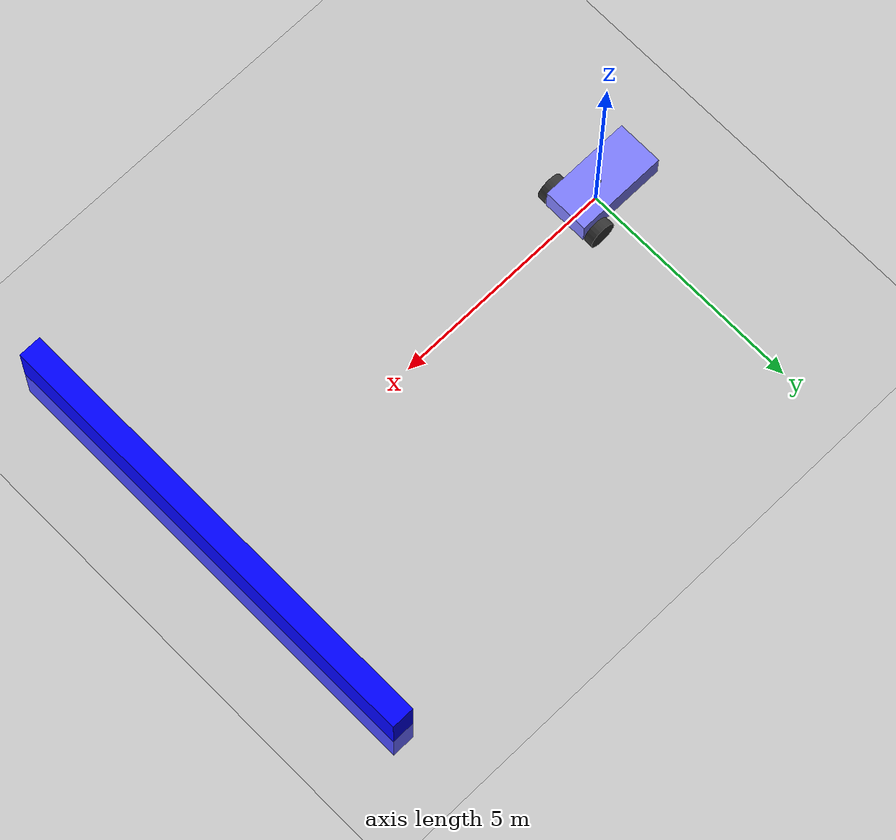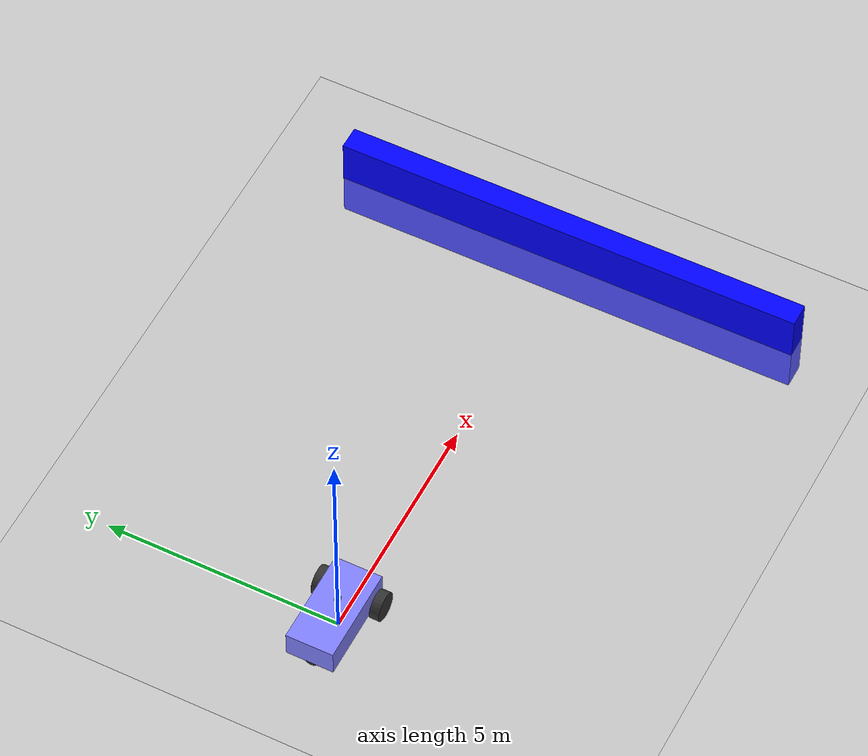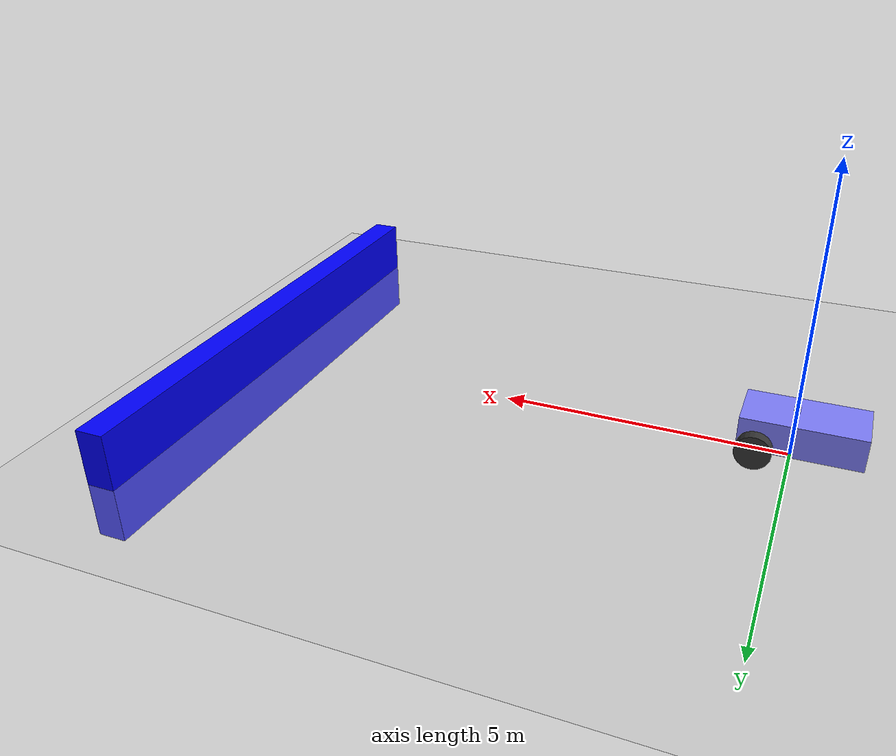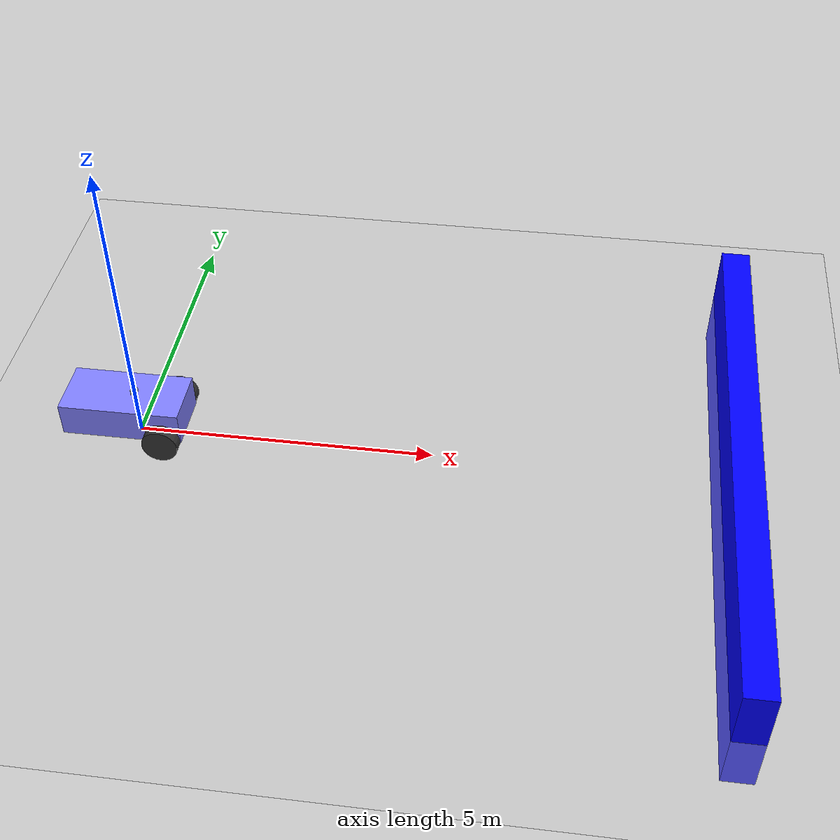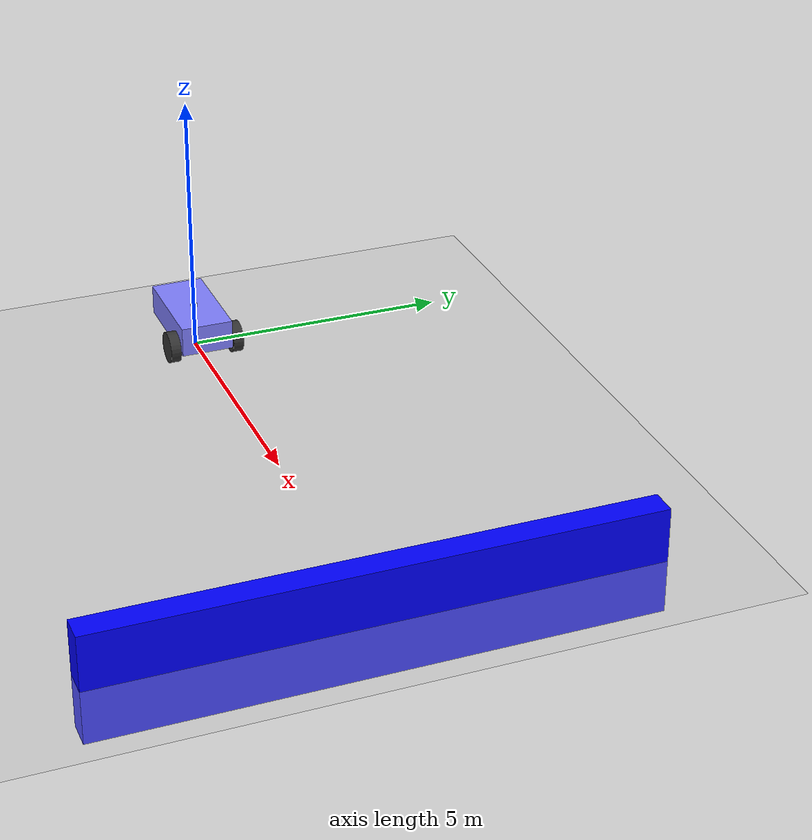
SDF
<?xml version="1.0" ?>
<sdf version="1.8">
  <world name="diff_drive_world">
    <plugin
      filename="gz-sim-physics-system"
      name="gz::sim::systems::Physics">
    </plugin>
    <plugin
      filename="gz-sim-sensors-system"
      name="gz::sim::systems::Sensors">
      <render_engine>ogre2</render_engine>
    </plugin>
    <plugin
      filename="gz-sim-scene-broadcaster-system"
      name="gz::sim::systems::SceneBroadcaster">
    </plugin>
    <plugin
      filename="gz-sim-user-commands-system"
      name="gz::sim::systems::UserCommands">
    </plugin>
    <plugin
      filename="BasicSystem"
      name="gz_worlds::BasicSystem">
    </plugin>
    <plugin
      filename="FullSystem"
      name="gz_worlds::FullSystem">
    </plugin>

    <light name="sun" type="directional">
      <cast_shadows>true</cast_shadows>
      <pose>0 0 10 0 0 0</pose>
      <diffuse>0.8 0.8 0.8 1</diffuse>
      <specular>0.2 0.2 0.2 1</specular>
      <attenuation>
        <range>1000</range>
        <constant>0.9</constant>
        <linear>0.01</linear>
        <quadratic>0.001</quadratic>
      </attenuation>
      <direction>-0.5 0.1 -0.9</direction>
    </light>

    <model name="ground_plane">
      <static>true</static>
      <link name="link">
        <collision name="collision">
          <geometry>
            <plane>
              <normal>0 0 1</normal>
              <size>100 100</size>
            </plane>
          </geometry>
        </collision>
        <visual name="visual">
          <geometry>
            <plane>
              <normal>0 0 1</normal>
              <size>100 100</size>
            </plane>
          </geometry>
          <material>
            <ambient>0.8 0.8 0.8 1</ambient>
            <diffuse>0.8 0.8 0.8 1</diffuse>
            <specular>0.8 0.8 0.8 1</specular>
          </material>
        </visual>
      </link>
    </model>

    <model name="wall">
      <pose>10 0 0 0 0 0</pose>
      <include merge="true">
        <uri>package://wall</uri>
      </include>
    </model>

    <model name="diff_drive">
      <self_collide>true</self_collide>
      <pose>0 0 0.35 0 0 0</pose>
      <include merge="true">
        <uri>package://diff_drive</uri>
      </include>

      <plugin
        filename="gz-sim-joint-state-publisher-system"
        name="gz::sim::systems::JointStatePublisher">
      </plugin>

      <plugin
        filename="gz-sim-pose-publisher-system"
        name="gz::sim::systems::PosePublisher">
        <publish_link_pose>true</publish_link_pose>
        <use_pose_vector_msg>true</use_pose_vector_msg>
        <static_publisher>true</static_publisher>
        <static_update_frequency>1</static_update_frequency>
      </plugin>

      <plugin
        filename="gz-sim-odometry-publisher-system"
        name="gz::sim::systems::OdometryPublisher">
        <odom_frame>diff_drive/odom</odom_frame>
        <robot_base_frame>diff_drive</robot_base_frame>
      </plugin>
    </model>

  </world>
</sdf>

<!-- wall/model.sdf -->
<sdf version='1.9'>
    <model name='wall'>
        <static>true</static>
        <link name='box'>
            <pose />
            <inertial> <!--inertial
                    properties of the link mass, inertia matix-->
                <mass>1.14395</mass>
                <inertia>
                    <ixx>9.532917</ixx>
                    <ixy>0</ixy>
                    <ixz>0</ixz>
                    <iyy>0.023832</iyy>
                    <iyz>0</iyz>
                    <izz>9.556749</izz>
                </inertia>
            </inertial>
            <visual name='visual'>
                <geometry>
                    <box>
                        <size>0.5 10.0 2.0</size>
                    </box>
                </geometry>
                <!--let's
                    add color to our link-->
                <material>
                    <ambient>0.0 0.0 1.0 1</ambient>
                    <diffuse>0.0 0.0 1.0 1</diffuse>
                    <specular>0.0 0.0 1.0 1</specular>
                </material>
            </visual>
            <collision name='collision'> <!--todo:
                    describe why we need the collision-->
                <geometry>
                    <box>
                        <size>0.5 10.0 2.0</size>
                    </box>
                </geometry>
            </collision>
            <sensor name='sensor_contact' type='contact'>
                <contact>
                    <collision>collision</collision>
                </contact>
            </sensor>
        </link>
        <plugin filename="gz-sim-touchplugin-system"
            name="gz::sim::systems::TouchPlugin">
            <target>vehicle_blue</target>
            <namespace>wall</namespace>
            <time>0.1</time>
            <enabled>true</enabled>
        </plugin>
    </model>
</sdf>

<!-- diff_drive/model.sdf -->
<sdf version="1.8">
  <model name='diff_drive'>
    <link name='chassis'>
      <pose>-0.151427 -0 0.175 0 -0 0</pose>
      <inertial>
        <mass>1.14395</mass>
        <inertia>
          <ixx>0.126164</ixx>
          <ixy>0</ixy>
          <ixz>0</ixz>
          <iyy>0.416519</iyy>
          <iyz>0</iyz>
          <izz>0.481014</izz>
        </inertia>
      </inertial>
      <visual name='visual_chassis'>
        <geometry>
          <box>
            <size>2.01142 1 0.568726</size>
          </box>
        </geometry>
        <material>
          <ambient>0.5 0.5 1.0 1</ambient>
          <diffuse>0.5 0.5 1.0 1</diffuse>
          <specular>0.0 0.0 1.0 1</specular>
        </material>
      </visual>
      <collision name='collision_chassis'>
        <geometry>
          <box>
            <size>2.01142 1 0.568726</size>
          </box>
        </geometry>
      </collision>
    </link>

    <link name='left_wheel'>
      <pose>0.554283 0.625029 -0.025 -1.5707 0 0</pose>
      <inertial>
        <mass>2</mass>
        <inertia>
          <ixx>0.145833</ixx>
          <ixy>0</ixy>
          <ixz>0</ixz>
          <iyy>0.145833</iyy>
          <iyz>0</iyz>
          <izz>0.125</izz>
        </inertia>
      </inertial>
      <visual name='visual_left_wheel'>
        <geometry>
          <cylinder>
            <radius>0.3</radius>
            <length>0.2</length>
          </cylinder>
        </geometry>
        <material>
          <ambient>0.2 0.2 0.2 1</ambient>
          <diffuse>0.2 0.2 0.2 1</diffuse>
          <specular>0.2 0.2 0.2 1</specular>
        </material>
      </visual>
      <collision name='collision_left_wheel'>
        <geometry>
          <cylinder>
            <radius>0.3</radius>
            <length>0.2</length>
          </cylinder>
        </geometry>
      </collision>
    </link>

    <link name='right_wheel'>
      <pose>0.554282 -0.625029 -0.025 -1.5707 0 0</pose>
      <inertial>
        <mass>2</mass>
        <inertia>
          <ixx>0.145833</ixx>
          <ixy>0</ixy>
          <ixz>0</ixz>
          <iyy>0.145833</iyy>
          <iyz>0</iyz>
          <izz>0.125</izz>
        </inertia>
      </inertial>
      <visual name='visual_right_wheel'>
        <geometry>
          <cylinder>
            <radius>0.3</radius>
            <length>0.2</length>
          </cylinder>
        </geometry>
        <material>
          <ambient>0.2 0.2 0.2 1</ambient>
          <diffuse>0.2 0.2 0.2 1</diffuse>
          <specular>0.2 0.2 0.2 1</specular>
        </material>
      </visual>
      <collision name='collision_right_wheel'>
        <geometry>
          <cylinder>
            <radius>0.3</radius>
            <length>0.2</length>
          </cylinder>
        </geometry>
      </collision>
    </link>

    <link name='caster'>
      <pose>-0.957138 -0 -0.125 0 -0 0</pose>
      <inertial>
        <mass>1</mass>
        <inertia>
          <ixx>0.1</ixx>
          <ixy>0</ixy>
          <ixz>0</ixz>
          <iyy>0.1</iyy>
          <iyz>0</iyz>
          <izz>0.1</izz>
        </inertia>
      </inertial>
      <visual name='visual_caster'>
        <geometry>
          <sphere>
            <radius>0.2</radius>
          </sphere>
        </geometry>
        <material>
          <ambient>0.2 0.2 0.2 1</ambient>
          <diffuse>0.2 0.2 0.2 1</diffuse>
          <specular>0.2 0.2 0.2 1</specular>
        </material>
      </visual>
      <collision name='collision_caster'>
        <geometry>
          <sphere>
            <radius>0.2</radius>
          </sphere>
        </geometry>
      </collision>
    </link>

    <link name="lidar_link">
      <pose>0 0 0.5 0 0 0</pose>
      <inertial>
        <mass>0.1</mass>
        <inertia>
          <ixx>0.000166667</ixx>
          <iyy>0.000166667</iyy>
          <izz>0.000166667</izz>
        </inertia>
      </inertial>
      <collision name="collision">
        <geometry>
          <box>
            <size>0.1 0.1 0.1</size>
          </box>
        </geometry>
      </collision>
      <visual name="visual">
        <geometry>
          <box>
            <size>0.1 0.1 0.1</size>
          </box>
        </geometry>
      </visual>
      <sensor name='gpu_lidar' type='gpu_lidar'>
        <pose>0 0 0 0 0 0</pose>
        <topic>/model/diff_drive_robot/scan</topic>
        <gz_frame_id>diff_drive_robot/lidar_link</gz_frame_id>
        <update_rate>10</update_rate>
        <lidar>
          <scan>
            <horizontal>
              <samples>640</samples>
              <resolution>1</resolution>
              <min_angle>-1.396263</min_angle>
              <max_angle>1.396263</max_angle>
            </horizontal>
            <vertical>
              <samples>1</samples>
              <resolution>1</resolution>
              <min_angle>0.0</min_angle>
              <max_angle>0.0</max_angle>
            </vertical>
          </scan>
          <range>
            <min>0.08</min>
            <max>10.0</max>
            <resolution>0.01</resolution>
          </range>
        </lidar>
        <always_on>1</always_on>
        <visualize>true</visualize>
      </sensor>
    </link>

    <joint name='lidar_joint' type='fixed'>
      <parent>chassis</parent>
      <child>lidar_link</child>
    </joint>

    <joint name='left_wheel_joint' type='revolute'>
      <parent>chassis</parent>
      <child>left_wheel</child>
      <axis>
        <xyz>0 0 1</xyz>
        <limit>
          <lower>-1.79769e+308</lower>
          <upper>1.79769e+308</upper>
        </limit>
      </axis>
    </joint>

    <joint name='right_wheel_joint' type='revolute'>
      <parent>chassis</parent>
      <child>right_wheel</child>
      <axis>
        <xyz>0 0 1</xyz>
        <limit>
          <lower>-1.79769e+308</lower>
          <upper>1.79769e+308</upper>
        </limit>
      </axis>
    </joint>

    <joint name='caster_wheel' type='ball'>
      <parent>chassis</parent>
      <child>caster</child>
    </joint>

    <plugin
      filename="gz-sim8-diff-drive-system"
      name="gz::sim::systems::DiffDrive">
      <left_joint>left_wheel_joint</left_joint>
      <right_joint>right_wheel_joint</right_joint>
      <wheel_separation>1.25</wheel_separation>
      <wheel_radius>0.3</wheel_radius>
      <odom_publish_frequency>1</odom_publish_frequency>
      <max_linear_acceleration>1</max_linear_acceleration>
      <min_linear_acceleration>-1</min_linear_acceleration>
      <max_angular_acceleration>2</max_angular_acceleration>
      <min_angular_acceleration>-2</min_angular_acceleration>
      <max_linear_velocity>20</max_linear_velocity>
      <min_linear_velocity>-20</min_linear_velocity>
      <max_angular_velocity>1</max_angular_velocity>
      <min_angular_velocity>-1</min_angular_velocity>
    </plugin>

    <plugin
      filename="gz-sim-joint-state-publisher-system"
      name="gz::sim::systems::JointStatePublisher">
    </plugin>

    <plugin
      filename="gz-sim-pose-publisher-system"
      name="gz::sim::systems::PosePublisher">
      <publish_link_pose>true</publish_link_pose>
      <use_pose_vector_msg>true</use_pose_vector_msg>
      <static_publisher>true</static_publisher>
      <static_update_frequency>1</static_update_frequency>
    </plugin>

    <plugin
      filename="gz-sim-odometry-publisher-system"
      name="gz::sim::systems::OdometryPublisher">
      <odom_frame>diff_drive/odom</odom_frame>
      <robot_base_frame>diff_drive_robot</robot_base_frame>
    </plugin>
  </model>
</sdf>
